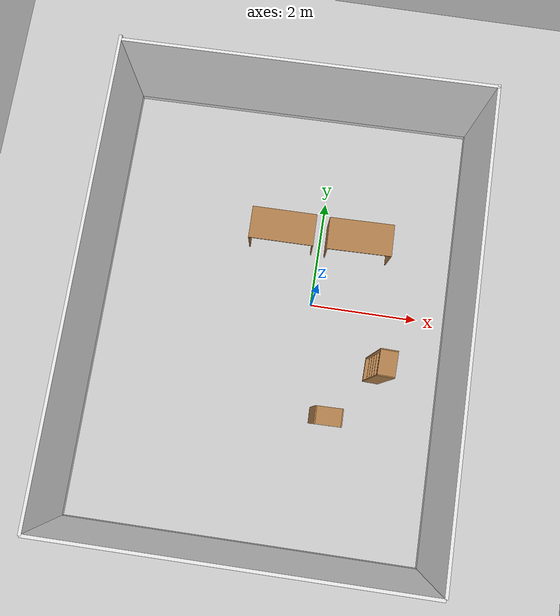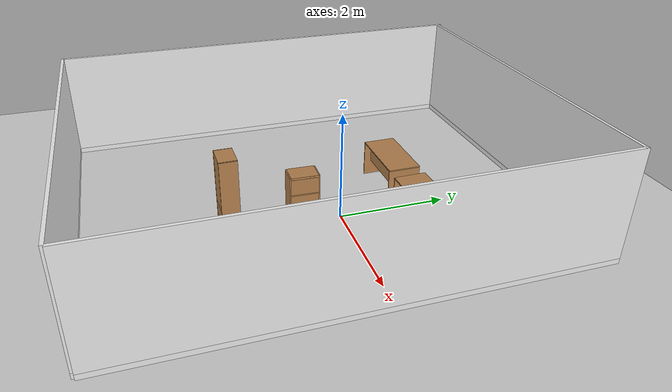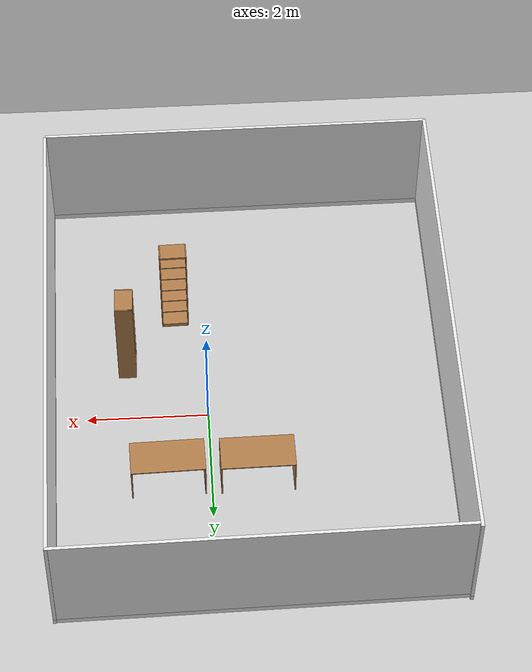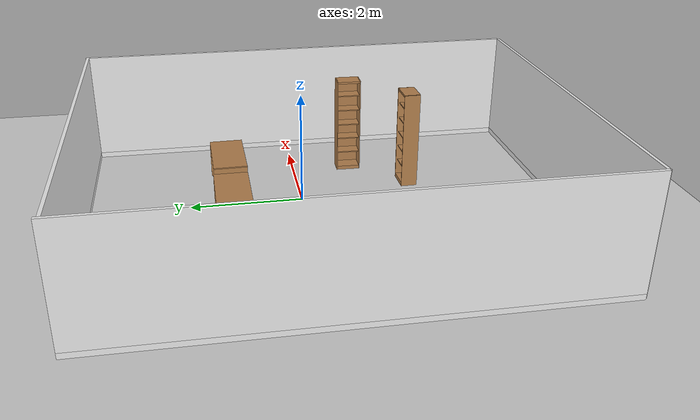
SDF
<sdf version="1.6">
 <world name="default">
  <physics name="default_physics" default="0" type="ode">
   <max_step_size>0.001</max_step_size>
   <real_time_factor>1</real_time_factor>
   <real_time_update_rate>1000</real_time_update_rate>
  </physics>
  <light name="sun" type="directional">
   <pose>0 0 10 0 -0 0</pose>
   <diffuse>0.8 0.8 0.8 1</diffuse>
   <specular>0.2 0.2 0.2 1</specular>
   <attenuation>
    <range>1000</range>
    <constant>0.9</constant>
    <linear>0.01</linear>
    <quadratic>0.001</quadratic>
   </attenuation>
   <direction>-0.5 0.1 -0.9</direction>
  </light>
  <model name="ground_plane">
   <static>1</static>
   <link name="link">
    <collision name="collision">
     <geometry><plane><normal>0 0 1</normal><size>100 100</size></plane></geometry>
     <surface>
      <contact><collide_bitmask>65535</collide_bitmask></contact>
      <friction><ode><mu>100</mu><mu2>50</mu2></ode></friction>
     </surface>
    </collision>
    <visual name="visual">
     <cast_shadows>0</cast_shadows>
     <geometry><plane><normal>0 0 1</normal><size>100 100</size></plane></geometry>
     <material>
      <script><uri>file://media/materials/scripts/gazebo.material</uri><name>Gazebo/Grey</name></script>
     </material>
    </visual>
   </link>
  </model>
  <gravity>0 0 -9.8</gravity>
  <magnetic_field>6e-06 2.3e-05 -4.2e-05</magnetic_field>
  <atmosphere type="adiabatic"/>
  <scene><ambient>0.4 0.4 0.4 1</ambient><background>0.7 0.7 0.7 1</background><shadows>1</shadows></scene>
  <spherical_coordinates>
   <surface_model>EARTH_WGS84</surface_model>
   <latitude_deg>0</latitude_deg>
   <longitude_deg>0</longitude_deg>
   <elevation>0</elevation>
   <heading_deg>0</heading_deg>
  </spherical_coordinates>
  <model name="office_desk">
   <link name="link">
    <inertial>
     <mass>10</mass>
     <inertia><ixx>1</ixx><ixy>0</ixy><ixz>0</ixz><iyy>1</iyy><iyz>0</iyz><izz>1</izz></inertia>
    </inertial>
    <visual name="top_board">
     <pose>-0.3 0.6 0.69 0 -0 0</pose>
     <geometry><box><size>0.6 1.2 0.02</size></box></geometry>
     <material>
      <script>
       <uri>model://base_materials/wood/scripts/wood.material</uri>
       <name>base_materials/dark_wood</name>
      </script>
     </material>
    </visual>
    <collision name="collision_top_board">
     <pose>-0.3 0.6 0.69 0 -0 0</pose>
     <geometry><box><size>0.6 1.2 0.02</size></box></geometry>
    </collision>
    <visual name="left_board">
     <pose>-0.3 0.01 0.34 0 -0 0</pose>
     <geometry><box><size>0.6 0.02 0.68</size></box></geometry>
     <material>
      <script>
       <uri>model://base_materials/wood/scripts/wood.material</uri>
       <name>base_materials/dark_wood</name>
      </script>
     </material>
    </visual>
    <collision name="collision_left_board">
     <pose>-0.3 0.01 0.34 0 -0 0</pose>
     <geometry><box><size>0.6 0.02 0.68</size></box></geometry>
    </collision>
    <visual name="right_board">
     <pose>-0.3 1.19 0.34 0 -0 0</pose>
     <geometry><box><size>0.6 0.02 0.68</size></box></geometry>
     <material>
      <script>
       <uri>model://base_materials/wood/scripts/wood.material</uri>
       <name>base_materials/dark_wood</name>
      </script>
     </material>
    </visual>
    <collision name="collision_right_board">
     <pose>-0.3 1.19 0.34 0 -0 0</pose>
     <geometry><box><size>0.6 0.02 0.68</size></box></geometry>
    </collision>
    <visual name="center_board">
     <pose>-0.14 0.6 0.49 0 -0 0</pose>
     <geometry><box><size>0.02 1.16 0.4</size></box></geometry>
     <material>
      <script>
       <uri>model://base_materials/wood/scripts/wood.material</uri>
       <name>base_materials/dark_wood</name>
      </script>
     </material>
    </visual>
    <collision name="ollision_center_board">
     <pose>-0.14 0.6 0.49 0 -0 0</pose>
     <geometry><box><size>0.02 1.16 0.4</size></box></geometry>
    </collision>
    <velocity_decay><linear>0</linear><angular>0</angular></velocity_decay>
   </link>
   <static>1</static>
   <pose>-1.34136 0.960427 0 0 0 -1.56174</pose>
  </model>
  <model name="office_desk_0">
   <link name="link">
    <inertial>
     <mass>10</mass>
     <inertia><ixx>1</ixx><ixy>0</ixy><ixz>0</ixz><iyy>1</iyy><iyz>0</iyz><izz>1</izz></inertia>
    </inertial>
    <visual name="top_board">
     <pose>-0.3 0.6 0.69 0 -0 0</pose>
     <geometry><box><size>0.6 1.2 0.02</size></box></geometry>
     <material>
      <script>
       <uri>model://base_materials/wood/scripts/wood.material</uri>
       <name>base_materials/dark_wood</name>
      </script>
     </material>
    </visual>
    <collision name="collision_top_board">
     <pose>-0.3 0.6 0.69 0 -0 0</pose>
     <geometry><box><size>0.6 1.2 0.02</size></box></geometry>
    </collision>
    <visual name="left_board">
     <pose>-0.3 0.01 0.34 0 -0 0</pose>
     <geometry><box><size>0.6 0.02 0.68</size></box></geometry>
     <material>
      <script>
       <uri>model://base_materials/wood/scripts/wood.material</uri>
       <name>base_materials/dark_wood</name>
      </script>
     </material>
    </visual>
    <collision name="collision_left_board">
     <pose>-0.3 0.01 0.34 0 -0 0</pose>
     <geometry><box><size>0.6 0.02 0.68</size></box></geometry>
    </collision>
    <visual name="right_board">
     <pose>-0.3 1.19 0.34 0 -0 0</pose>
     <geometry><box><size>0.6 0.02 0.68</size></box></geometry>
     <material>
      <script>
       <uri>model://base_materials/wood/scripts/wood.material</uri>
       <name>base_materials/dark_wood</name>
      </script>
     </material>
    </visual>
    <collision name="collision_right_board">
     <pose>-0.3 1.19 0.34 0 -0 0</pose>
     <geometry><box><size>0.6 0.02 0.68</size></box></geometry>
    </collision>
    <visual name="center_board">
     <pose>-0.14 0.6 0.49 0 -0 0</pose>
     <geometry><box><size>0.02 1.16 0.4</size></box></geometry>
     <material>
      <script>
       <uri>model://base_materials/wood/scripts/wood.material</uri>
       <name>base_materials/dark_wood</name>
      </script>
     </material>
    </visual>
    <collision name="ollision_center_board">
     <pose>-0.14 0.6 0.49 0 -0 0</pose>
     <geometry><box><size>0.02 1.16 0.4</size></box></geometry>
    </collision>
    <velocity_decay><linear>0</linear><angular>0</angular></velocity_decay>
   </link>
   <static>1</static>
   <pose>0.10576 0.959809 0 0 0 -1.54892</pose>
  </model>
  <model name="high_shelf">
   <link name="link">
    <inertial>
     <mass>5</mass>
     <inertia><ixx>1</ixx><ixy>0</ixy><ixz>0</ixz><iyy>1</iyy><iyz>0</iyz><izz>1</izz></inertia>
    </inertial>
    <visual name="left_board">
     <pose>-0.1475 0.009 0.898 0 -0 0</pose>
     <geometry><box><size>0.295 0.018 1.796</size></box></geometry>
     <material>
      <script>
       <uri>model://base_materials/wood/scripts</uri>
       <uri>model://base_materials/wood/textures</uri>
       <name>base_materials/light_wood</name>
      </script>
     </material>
    </visual>
    <collision name="collision_left_board">
     <pose>-0.1475 0.009 0.898 0 -0 0</pose>
     <geometry><box><size>0.295 0.018 1.796</size></box></geometry>
    </collision>
    <visual name="right_board">
     <pose>-0.1475 0.441 0.898 0 -0 0</pose>
     <geometry><box><size>0.295 0.018 1.796</size></box></geometry>
     <material>
      <script>
       <uri>model://base_materials/wood/scripts</uri>
       <uri>model://base_materials/wood/textures</uri>
       <name>base_materials/light_wood</name>
      </script>
     </material>
    </visual>
    <collision name="collision_right_board">
     <pose>-0.1475 0.441 0.898 0 -0 0</pose>
     <geometry><box><size>0.295 0.018 1.796</size></box></geometry>
    </collision>
    <visual name="top_board">
     <pose>-0.1475 0.225 1.7825 0 -0 0</pose>
     <geometry><box><size>0.295 0.414 0.035</size></box></geometry>
     <material>
      <script>
       <uri>model://base_materials/wood/scripts</uri>
       <uri>model://base_materials/wood/textures</uri>
       <name>base_materials/light_wood</name>
      </script>
     </material>
    </visual>
    <collision name="collision_top_board">
     <pose>-0.1475 0.225 1.7825 0 -0 0</pose>
     <geometry><box><size>0.295 0.414 0.035</size></box></geometry>
    </collision>
    <visual name="1st_shelf">
     <pose>-0.162 0.225 1.51 0 -0 0</pose>
     <geometry><box><size>0.266 0.414 0.018</size></box></geometry>
     <material>
      <script>
       <uri>model://base_materials/wood/scripts</uri>
       <uri>model://base_materials/wood/textures</uri>
       <name>base_materials/light_wood</name>
      </script>
     </material>
    </visual>
    <collision name="collision_1st_shelf">
     <pose>-0.162 0.225 1.51 0 -0 0</pose>
     <geometry><box><size>0.266 0.414 0.018</size></box></geometry>
    </collision>
    <visual name="2nd_shelf">
     <pose>-0.162 0.225 1.22 0 -0 0</pose>
     <geometry><box><size>0.266 0.414 0.018</size></box></geometry>
     <material>
      <script>
       <uri>model://base_materials/wood/scripts</uri>
       <uri>model://base_materials/wood/textures</uri>
       <name>base_materials/light_wood</name>
      </script>
     </material>
    </visual>
    <collision name="collision_2nd_shelf">
     <pose>-0.162 0.225 1.22 0 -0 0</pose>
     <geometry><box><size>0.266 0.414 0.018</size></box></geometry>
    </collision>
    <visual name="3rd_shelf">
     <pose>-0.162 0.225 0.93 0 -0 0</pose>
     <geometry><box><size>0.266 0.414 0.018</size></box></geometry>
     <material>
      <script>
       <uri>model://base_materials/wood/scripts</uri>
       <uri>model://base_materials/wood/textures</uri>
       <name>base_materials/light_wood</name>
      </script>
     </material>
    </visual>
    <collision name="collision_3rd_shelf">
     <pose>-0.162 0.225 0.93 0 -0 0</pose>
     <geometry><box><size>0.266 0.414 0.018</size></box></geometry>
    </collision>
    <visual name="4th_shelf">
     <pose>-0.162 0.225 0.65 0 -0 0</pose>
     <geometry><box><size>0.266 0.414 0.018</size></box></geometry>
     <material>
      <script>
       <uri>model://base_materials/wood/scripts</uri>
       <uri>model://base_materials/wood/textures</uri>
       <name>base_materials/light_wood</name>
      </script>
     </material>
    </visual>
    <collision name="collision_4th_shelf">
     <pose>-0.162 0.225 0.65 0 -0 0</pose>
     <geometry><box><size>0.266 0.414 0.018</size></box></geometry>
    </collision>
    <visual name="5th_shelf">
     <pose>-0.162 0.225 0.36 0 -0 0</pose>
     <geometry><box><size>0.266 0.414 0.018</size></box></geometry>
     <material>
      <script>
       <uri>model://base_materials/wood/scripts</uri>
       <uri>model://base_materials/wood/textures</uri>
       <name>base_materials/light_wood</name>
      </script>
     </material>
    </visual>
    <collision name="collision_5th_shelf">
     <pose>-0.162 0.225 0.36 0 -0 0</pose>
     <geometry><box><size>0.266 0.414 0.018</size></box></geometry>
    </collision>
    <visual name="bottom_board">
     <pose>-0.1475 0.225 0.035 0 -0 0</pose>
     <geometry><box><size>0.295 0.414 0.07</size></box></geometry>
     <material>
      <script>
       <uri>model://base_materials/wood/scripts</uri>
       <uri>model://base_materials/wood/textures</uri>
       <name>base_materials/light_wood</name>
      </script>
     </material>
    </visual>
    <collision name="collision_bottom_board">
     <pose>-0.1475 0.225 0.035 0 -0 0</pose>
     <geometry><box><size>0.295 0.414 0.07</size></box></geometry>
    </collision>
    <visual name="back_board">
     <pose>-0.286 0.225 0.898 0 -0 0</pose>
     <geometry><box><size>0.018 0.414 1.796</size></box></geometry>
     <material>
      <script>
       <uri>model://base_materials/wood/scripts</uri>
       <uri>model://base_materials/wood/textures</uri>
       <name>base_materials/light_wood</name>
      </script>
     </material>
    </visual>
    <collision name="collision_back_board">
     <pose>-0.286 0.225 0.898 0 -0 0</pose>
     <geometry><box><size>0.018 0.414 1.796</size></box></geometry>
    </collision>
    <velocity_decay><linear>0</linear><angular>0</angular></velocity_decay>
   </link>
   <static>1</static>
   <pose>0.691871 -1.90318 0 0 -0 1.59143</pose>
  </model>
  <model name="high_shelf_0">
   <link name="link">
    <inertial>
     <mass>5</mass>
     <inertia><ixx>1</ixx><ixy>0</ixy><ixz>0</ixz><iyy>1</iyy><iyz>0</iyz><izz>1</izz></inertia>
    </inertial>
    <visual name="left_board">
     <pose>-0.1475 0.009 0.898 0 -0 0</pose>
     <geometry><box><size>0.295 0.018 1.796</size></box></geometry>
     <material>
      <script>
       <uri>model://base_materials/wood/scripts</uri>
       <uri>model://base_materials/wood/textures</uri>
       <name>base_materials/light_wood</name>
      </script>
     </material>
    </visual>
    <collision name="collision_left_board">
     <pose>-0.1475 0.009 0.898 0 -0 0</pose>
     <geometry><box><size>0.295 0.018 1.796</size></box></geometry>
    </collision>
    <visual name="right_board">
     <pose>-0.1475 0.441 0.898 0 -0 0</pose>
     <geometry><box><size>0.295 0.018 1.796</size></box></geometry>
     <material>
      <script>
       <uri>model://base_materials/wood/scripts</uri>
       <uri>model://base_materials/wood/textures</uri>
       <name>base_materials/light_wood</name>
      </script>
     </material>
    </visual>
    <collision name="collision_right_board">
     <pose>-0.1475 0.441 0.898 0 -0 0</pose>
     <geometry><box><size>0.295 0.018 1.796</size></box></geometry>
    </collision>
    <visual name="top_board">
     <pose>-0.1475 0.225 1.7825 0 -0 0</pose>
     <geometry><box><size>0.295 0.414 0.035</size></box></geometry>
     <material>
      <script>
       <uri>model://base_materials/wood/scripts</uri>
       <uri>model://base_materials/wood/textures</uri>
       <name>base_materials/light_wood</name>
      </script>
     </material>
    </visual>
    <collision name="collision_top_board">
     <pose>-0.1475 0.225 1.7825 0 -0 0</pose>
     <geometry><box><size>0.295 0.414 0.035</size></box></geometry>
    </collision>
    <visual name="1st_shelf">
     <pose>-0.162 0.225 1.51 0 -0 0</pose>
     <geometry><box><size>0.266 0.414 0.018</size></box></geometry>
     <material>
      <script>
       <uri>model://base_materials/wood/scripts</uri>
       <uri>model://base_materials/wood/textures</uri>
       <name>base_materials/light_wood</name>
      </script>
     </material>
    </visual>
    <collision name="collision_1st_shelf">
     <pose>-0.162 0.225 1.51 0 -0 0</pose>
     <geometry><box><size>0.266 0.414 0.018</size></box></geometry>
    </collision>
    <visual name="2nd_shelf">
     <pose>-0.162 0.225 1.22 0 -0 0</pose>
     <geometry><box><size>0.266 0.414 0.018</size></box></geometry>
     <material>
      <script>
       <uri>model://base_materials/wood/scripts</uri>
       <uri>model://base_materials/wood/textures</uri>
       <name>base_materials/light_wood</name>
      </script>
     </material>
    </visual>
    <collision name="collision_2nd_shelf">
     <pose>-0.162 0.225 1.22 0 -0 0</pose>
     <geometry><box><size>0.266 0.414 0.018</size></box></geometry>
    </collision>
    <visual name="3rd_shelf">
     <pose>-0.162 0.225 0.93 0 -0 0</pose>
     <geometry><box><size>0.266 0.414 0.018</size></box></geometry>
     <material>
      <script>
       <uri>model://base_materials/wood/scripts</uri>
       <uri>model://base_materials/wood/textures</uri>
       <name>base_materials/light_wood</name>
      </script>
     </material>
    </visual>
    <collision name="collision_3rd_shelf">
     <pose>-0.162 0.225 0.93 0 -0 0</pose>
     <geometry><box><size>0.266 0.414 0.018</size></box></geometry>
    </collision>
    <visual name="4th_shelf">
     <pose>-0.162 0.225 0.65 0 -0 0</pose>
     <geometry><box><size>0.266 0.414 0.018</size></box></geometry>
     <material>
      <script>
       <uri>model://base_materials/wood/scripts</uri>
       <uri>model://base_materials/wood/textures</uri>
       <name>base_materials/light_wood</name>
      </script>
     </material>
    </visual>
    <collision name="collision_4th_shelf">
     <pose>-0.162 0.225 0.65 0 -0 0</pose>
     <geometry><box><size>0.266 0.414 0.018</size></box></geometry>
    </collision>
    <visual name="5th_shelf">
     <pose>-0.162 0.225 0.36 0 -0 0</pose>
     <geometry><box><size>0.266 0.414 0.018</size></box></geometry>
     <material>
      <script>
       <uri>model://base_materials/wood/scripts</uri>
       <uri>model://base_materials/wood/textures</uri>
       <name>base_materials/light_wood</name>
      </script>
     </material>
    </visual>
    <collision name="collision_5th_shelf">
     <pose>-0.162 0.225 0.36 0 -0 0</pose>
     <geometry><box><size>0.266 0.414 0.018</size></box></geometry>
    </collision>
    <visual name="bottom_board">
     <pose>-0.1475 0.225 0.035 0 -0 0</pose>
     <geometry><box><size>0.295 0.414 0.07</size></box></geometry>
     <material>
      <script>
       <uri>model://base_materials/wood/scripts</uri>
       <uri>model://base_materials/wood/textures</uri>
       <name>base_materials/light_wood</name>
      </script>
     </material>
    </visual>
    <collision name="collision_bottom_board">
     <pose>-0.1475 0.225 0.035 0 -0 0</pose>
     <geometry><box><size>0.295 0.414 0.07</size></box></geometry>
    </collision>
    <visual name="back_board">
     <pose>-0.286 0.225 0.898 0 -0 0</pose>
     <geometry><box><size>0.018 0.414 1.796</size></box></geometry>
     <material>
      <script>
       <uri>model://base_materials/wood/scripts</uri>
       <uri>model://base_materials/wood/textures</uri>
       <name>base_materials/light_wood</name>
      </script>
     </material>
    </visual>
    <collision name="collision_back_board">
     <pose>-0.286 0.225 0.898 0 -0 0</pose>
     <geometry><box><size>0.018 0.414 1.796</size></box></geometry>
    </collision>
    <velocity_decay><linear>0</linear><angular>0</angular></velocity_decay>
   </link>
   <static>1</static>
   <pose>1.15882 -0.843678 0 0 -0 3.11551</pose>
  </model>
  <model name="full_wall_55_8295_2090">
   <link name="link">
    <inertial>
     <mass>50</mass>
     <inertia><ixx>1</ixx><ixy>0</ixy><ixz>0</ixz><iyy>1</iyy><iyz>0</iyz><izz>1</izz></inertia>
    </inertial>
    <visual name="bottom_frame">
     <pose>0 0 0.05 0 -0 0</pose>
     <geometry><box><size>0.055 8.295 0.1</size></box></geometry>
     <material>
      <script><uri>model://base_materials/color/scripts</uri><name>hsr_color/white</name></script>
     </material>
    </visual>
    <collision name="collision_bottom_frame">
     <pose>0 0 0.05 0 -0 0</pose>
     <geometry><box><size>0.055 8.295 0.1</size></box></geometry>
    </collision>
    <visual name="wall">
     <pose>0 0 1.095 0 -0 0</pose>
     <geometry><box><size>0.055 8.295 1.99</size></box></geometry>
     <material>
      <script>
       <uri>model://base_materials/wall/scripts</uri>
       <uri>model://base_materials/wall/textures</uri>
       <name>wall/white_noise</name>
      </script>
     </material>
    </visual>
    <collision name="collision_wall">
     <pose>0 0 1.095 0 -0 0</pose>
     <geometry><box><size>0.055 8.295 1.99</size></box></geometry>
    </collision>
    <velocity_decay><linear>0</linear><angular>0</angular></velocity_decay>
   </link>
   <static>1</static>
   <pose>2.5428 -0.317773 0 0 -0 0</pose>
  </model>
  <model name="full_wall_55_8295_2090_0">
   <link name="link">
    <inertial>
     <mass>50</mass>
     <inertia><ixx>1</ixx><ixy>0</ixy><ixz>0</ixz><iyy>1</iyy><iyz>0</iyz><izz>1</izz></inertia>
    </inertial>
    <visual name="bottom_frame">
     <pose>0 0 0.05 0 -0 0</pose>
     <geometry><box><size>0.055 8.295 0.1</size></box></geometry>
     <material>
      <script><uri>model://base_materials/color/scripts</uri><name>hsr_color/white</name></script>
     </material>
    </visual>
    <collision name="collision_bottom_frame">
     <pose>0 0 0.05 0 -0 0</pose>
     <geometry><box><size>0.055 8.295 0.1</size></box></geometry>
    </collision>
    <visual name="wall">
     <pose>0 0 1.095 0 -0 0</pose>
     <geometry><box><size>0.055 8.295 1.99</size></box></geometry>
     <material>
      <script>
       <uri>model://base_materials/wall/scripts</uri>
       <uri>model://base_materials/wall/textures</uri>
       <name>wall/white_noise</name>
      </script>
     </material>
    </visual>
    <collision name="collision_wall">
     <pose>0 0 1.095 0 -0 0</pose>
     <geometry><box><size>0.055 8.295 1.99</size></box></geometry>
    </collision>
    <velocity_decay><linear>0</linear><angular>0</angular></velocity_decay>
   </link>
   <static>1</static>
   <pose>-3.93176 -0.372234 0 0 -0 0</pose>
  </model>
  <model name="full_wall_55_6475_2090">
   <link name="link">
    <inertial>
     <mass>50</mass>
     <inertia><ixx>1</ixx><ixy>0</ixy><ixz>0</ixz><iyy>1</iyy><iyz>0</iyz><izz>1</izz></inertia>
    </inertial>
    <visual name="bottom_frame">
     <pose>0 0 0.05 0 -0 0</pose>
     <geometry><box><size>0.055 6.475 0.1</size></box></geometry>
     <material>
      <script><uri>model://base_materials/color/scripts</uri><name>hsr_color/white</name></script>
     </material>
    </visual>
    <collision name="collision_bottom_frame">
     <pose>0 0 0.05 0 -0 0</pose>
     <geometry><box><size>0.055 6.475 0.1</size></box></geometry>
    </collision>
    <visual name="wall">
     <pose>0 0 1.095 0 -0 0</pose>
     <geometry><box><size>0.055 6.475 1.99</size></box></geometry>
     <material>
      <script>
       <uri>model://base_materials/wall/scripts</uri>
       <uri>model://base_materials/wall/textures</uri>
       <name>wall/white_noise</name>
      </script>
     </material>
    </visual>
    <collision name="collision_wall">
     <pose>0 0 1.095 0 -0 0</pose>
     <geometry><box><size>0.055 6.475 1.99</size></box></geometry>
    </collision>
    <velocity_decay><linear>0</linear><angular>0</angular></velocity_decay>
   </link>
   <static>1</static>
   <pose>-0.670376 3.74947 0 0 -0 1.58507</pose>
  </model>
  <model name="full_wall_55_6475_2090_0">
   <link name="link">
    <inertial>
     <mass>50</mass>
     <inertia><ixx>1</ixx><ixy>0</ixy><ixz>0</ixz><iyy>1</iyy><iyz>0</iyz><izz>1</izz></inertia>
    </inertial>
    <visual name="bottom_frame">
     <pose>0 0 0.05 0 -0 0</pose>
     <geometry><box><size>0.055 6.475 0.1</size></box></geometry>
     <material>
      <script><uri>model://base_materials/color/scripts</uri><name>hsr_color/white</name></script>
     </material>
    </visual>
    <collision name="collision_bottom_frame">
     <pose>0 0 0.05 0 -0 0</pose>
     <geometry><box><size>0.055 6.475 0.1</size></box></geometry>
    </collision>
    <visual name="wall">
     <pose>0 0 1.095 0 -0 0</pose>
     <geometry><box><size>0.055 6.475 1.99</size></box></geometry>
     <material>
      <script>
       <uri>model://base_materials/wall/scripts</uri>
       <uri>model://base_materials/wall/textures</uri>
       <name>wall/white_noise</name>
      </script>
     </material>
    </visual>
    <collision name="collision_wall">
     <pose>0 0 1.095 0 -0 0</pose>
     <geometry><box><size>0.055 6.475 1.99</size></box></geometry>
    </collision>
    <velocity_decay><linear>0</linear><angular>0</angular></velocity_decay>
   </link>
   <static>1</static>
   <pose>-0.701639 -4.49827 0 0 -0 1.57579</pose>
  </model>
 </world>
</sdf>
